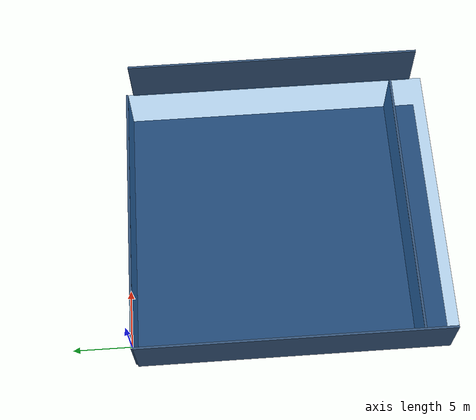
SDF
<?xml version="1.0" ?>
<sdf version="1.9">
  <world name="auv_pool_world">

    <!-- ============================================================
         PHYSICS - real gravity with buoyancy
    ============================================================ -->
    <gravity>0 0 -9.81</gravity>

    <physics name="1ms" type="ignored">
      <max_step_size>0.001</max_step_size>
      <real_time_factor>1.0</real_time_factor>
    </physics>

    <!-- ============================================================
         REQUIRED PLUGINS
    ============================================================ -->
    <plugin filename="gz-sim-physics-system"
            name="gz::sim::systems::Physics"/>
    <plugin filename="gz-sim-scene-broadcaster-system"
            name="gz::sim::systems::SceneBroadcaster"/>
    <plugin filename="gz-sim-user-commands-system"
            name="gz::sim::systems::UserCommands"/>
    <plugin filename="gz-sim-sensors-system"
            name="gz::sim::systems::Sensors">
      <render_engine>ogre2</render_engine>
    </plugin>
    <plugin filename="gz-sim-buoyancy-system"
            name="gz::sim::systems::Buoyancy">
      <graded_buoyancy>
        <default_density>1025</default_density>
        <density_change>
          <above_depth>0</above_depth>
          <density>1</density>
        </density_change>
      </graded_buoyancy>
      <enable>auv_box::buoyancy_link</enable>
    </plugin>

    <!-- ============================================================
         SCENE - underwater ambient colours
    ============================================================ -->
    <scene>
      <ambient>0.35 0.55 0.75 1</ambient>
      <background>0.05 0.28 0.45 1</background>
      <shadows>true</shadows>
      <!-- subtle linear fog to mimic water visibility falloff -->
      <fog>
        <type>linear</type>
        <color>0.05 0.28 0.50 1.0</color>
        <start>4.0</start>
        <end>25.0</end>
      </fog>
    </scene>

    <!-- ============================================================
         LIGHTING - directional sun entering from above/ahead
    ============================================================ -->
    <light type="directional" name="sun">
      <!-- Positioned high above pool centre, angled slightly forward -->
      <pose>12.5 -14 20 0 0.4 0</pose>
      <diffuse>0.9 0.95 1.0 1</diffuse>
      <specular>0.3 0.35 0.4 1</specular>
      <direction>-0.2 0.1 -1</direction>
      <cast_shadows>true</cast_shadows>
    </light>

    <!-- Ambient fill light so the pool floor is not pitch black -->
    <light type="point" name="fill_light">
      <pose>12.5 -14 -1 0 0 0</pose>
      <diffuse>0.3 0.5 0.7 1</diffuse>
      <specular>0.1 0.15 0.2 1</specular>
      <attenuation>
        <range>40</range>
        <constant>0.5</constant>
        <linear>0.01</linear>
        <quadratic>0.001</quadratic>
      </attenuation>
    </light>

    <model name="pool_floor">
      <static>true</static>
      <pose>12.5 -14 -5.1 0 0 0</pose>
      <link name="link">
        <collision name="floor_collision">
          <geometry>
            <box><size>25 28 0.2</size></box>
          </geometry>
          <surface>
            <friction>
              <ode><mu>0.8</mu><mu2>0.8</mu2></ode>
            </friction>
          </surface>
        </collision>
        <visual name="floor_visual">
          <geometry>
            <box><size>25 28 0.2</size></box>
          </geometry>
          <material>
            <!-- Dark tiled pool floor -->
            <ambient>0.12 0.18 0.28 1</ambient>
            <diffuse>0.15 0.22 0.32 1</diffuse>
            <specular>0.05 0.08 0.12 0.5</specular>
          </material>
        </visual>
      </link>
    </model>

    <model name="pool_wall_north">
      <static>true</static>
      <pose>12.5 0.1 -2.5 0 0 0</pose>
      <link name="link">
        <collision name="wall_collision">
          <geometry>
            <box><size>25 0.2 5</size></box>
          </geometry>
        </collision>
        <visual name="wall_visual">
          <geometry>
            <box><size>25 0.2 5</size></box>
          </geometry>
          <material>
            <ambient>0.18 0.25 0.40 1</ambient>
            <diffuse>0.20 0.32 0.46 1</diffuse>
            <specular>0.05 0.08 0.12 0.5</specular>
          </material>
        </visual>
      </link>
    </model>

    <model name="pool_wall_south">
      <static>true</static>
      <pose>12.5 -25.1 -2.5 0 0 0</pose>
      <link name="link">
        <collision name="wall_collision">
          <geometry>
            <box><size>25 0.2 5</size></box>
          </geometry>
        </collision>
        <visual name="wall_visual">
          <geometry>
            <box><size>25 0.2 5</size></box>
          </geometry>
          <material>
            <ambient>0.18 0.25 0.40 1</ambient>
            <diffuse>0.20 0.32 0.46 1</diffuse>
            <specular>0.05 0.08 0.12 0.5</specular>
          </material>
        </visual>
      </link>
    </model>

    <model name="pool_wall_west">
      <static>true</static>
      <pose>-0.1 -14 -2.5 0 0 0</pose>
      <link name="link">
        <collision name="wall_collision">
          <geometry>
            <box><size>0.2 28 5</size></box>
          </geometry>
        </collision>
        <visual name="wall_visual">
          <geometry>
            <box><size>0.2 28 5</size></box>
          </geometry>
          <material>
            <ambient>0.18 0.25 0.40 1</ambient>
            <diffuse>0.20 0.32 0.46 1</diffuse>
            <specular>0.05 0.08 0.12 0.5</specular>
          </material>
        </visual>
      </link>
    </model>

    <model name="pool_wall_east">
      <static>true</static>
      <pose>28.1 -14 -2.5 0 0 0</pose>
      <link name="link">
        <collision name="wall_collision">
          <geometry>
            <box><size>0.2 28 5</size></box>
          </geometry>
        </collision>
        <visual name="wall_visual">
          <geometry>
            <box><size>0.2 28 5</size></box>
          </geometry>
          <material>
            <ambient>0.18 0.25 0.40 1</ambient>
            <diffuse>0.20 0.32 0.46 1</diffuse>
            <specular>0.05 0.08 0.12 0.5</specular>
          </material>
        </visual>
      </link>
    </model>

    <model name="water_surface">
      <static>true</static>
      <pose>12.5 -14 0 0 0 0</pose>
      <link name="link">
        <visual name="water_visual">
          <geometry>
            <plane>
              <normal>0 0 1</normal>
              <size>25 28</size>
            </plane>
          </geometry>
          <material>
            <!-- Semi-transparent blue water surface -->
            <ambient>0.05 0.35 0.70 0.55</ambient>
            <diffuse>0.10 0.45 0.80 0.55</diffuse>
            <specular>0.60 0.80 1.00 0.80</specular>
            <emissive>0.00 0.05 0.15 0.0</emissive>
          </material>
          <transparency>0.45</transparency>
        </visual>
      </link>
    </model>

  </world>
</sdf>
